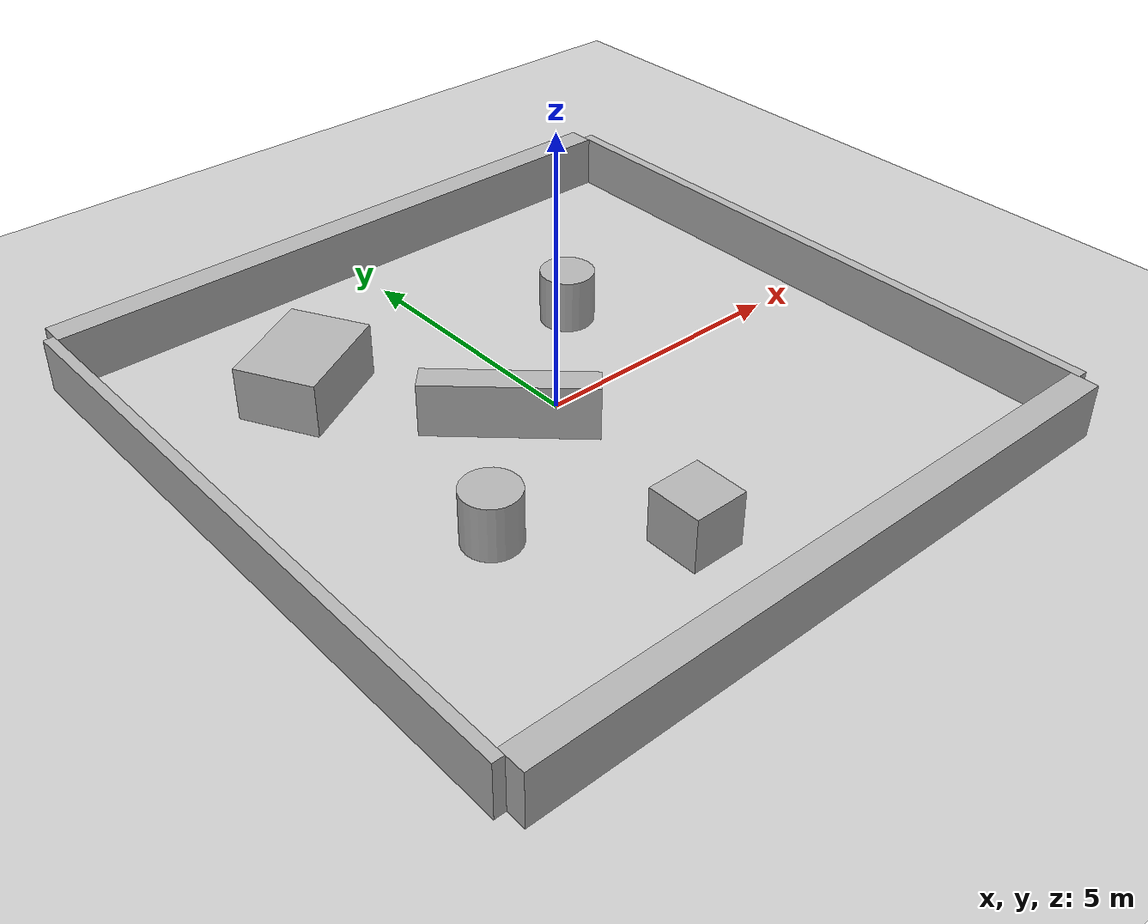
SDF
<sdf version='1.12'>
  <world name='empty'>
    <physics name='1ms' type='ignored'>
      <max_step_size>0.001</max_step_size>
      <real_time_factor>1</real_time_factor>
      <real_time_update_rate>1000</real_time_update_rate>
    </physics>
    <plugin name='gz::sim::systems::Physics' filename='gz-sim-physics-system'/>
    <plugin name='gz::sim::systems::UserCommands' filename='gz-sim-user-commands-system'/>
    <plugin name='gz::sim::systems::SceneBroadcaster' filename='gz-sim-scene-broadcaster-system'/>
    <plugin name='gz::sim::systems::Contact' filename='gz-sim-contact-system'/>
    <gravity>0 0 -9.8000000000000007</gravity>
    <magnetic_field>5.5644999999999998e-06 2.2875799999999999e-05 -4.2388400000000002e-05</magnetic_field>
    <atmosphere type='adiabatic'/>
    <scene>
      <ambient>0.400000006 0.400000006 0.400000006 1</ambient>
      <background>0.699999988 0.699999988 0.699999988 1</background>
      <shadows>true</shadows>
    </scene>
    <model name='ground_plane'>
      <static>true</static>
      <link name='link'>
        <collision name='collision'>
          <geometry>
            <plane>
              <normal>0 0 1</normal>
              <size>100 100</size>
            </plane>
          </geometry>
          <surface>
            <friction>
              <ode/>
            </friction>
            <bounce/>
            <contact/>
          </surface>
        </collision>
        <visual name='visual'>
          <geometry>
            <plane>
              <normal>0 0 1</normal>
              <size>100 100</size>
            </plane>
          </geometry>
          <material>
            <ambient>0.800000012 0.800000012 0.800000012 1</ambient>
            <diffuse>0.800000012 0.800000012 0.800000012 1</diffuse>
            <specular>0.800000012 0.800000012 0.800000012 1</specular>
          </material>
        </visual>
        <pose>0 0 0 0 0 0</pose>
        <inertial>
          <pose>0 0 0 0 0 0</pose>
          <mass>1</mass>
          <inertia>
            <ixx>1</ixx>
            <ixy>0</ixy>
            <ixz>0</ixz>
            <iyy>1</iyy>
            <iyz>0</iyz>
            <izz>1</izz>
          </inertia>
        </inertial>
        <enable_wind>false</enable_wind>
      </link>
      <pose>0 0 0 0 0 0</pose>
      <self_collide>false</self_collide>
    </model>
    <model name='cylinder_obstacle_1'>
      <pose>2 2 0.49999922592742291 2.4665081234791089e-19 2.0677277525939973e-19 2.9421610884104726e-20</pose>
      <link name='cylinder_link'>
        <inertial>
          <inertia>
            <ixx>0.14580000000000001</ixx>
            <ixy>0</ixy>
            <ixz>0</ixz>
            <iyy>0.14580000000000001</iyy>
            <iyz>0</iyz>
            <izz>0.125</izz>
          </inertia>
          <mass>1</mass>
          <pose>0 0 0 0 0 0</pose>
        </inertial>
        <collision name='cylinder_collision'>
          <geometry>
            <cylinder>
              <radius>0.5</radius>
              <length>1</length>
            </cylinder>
          </geometry>
          <surface>
            <friction>
              <ode/>
            </friction>
            <bounce/>
            <contact/>
          </surface>
        </collision>
        <visual name='cylinder_visual'>
          <geometry>
            <cylinder>
              <radius>0.5</radius>
              <length>1</length>
            </cylinder>
          </geometry>
          <material>
            <ambient>0.300000012 0.300000012 0.300000012 1</ambient>
            <diffuse>0.699999988 0.699999988 0.699999988 1</diffuse>
            <specular>1 1 1 1</specular>
          </material>
        </visual>
        <pose>0 0 0 0 0 0</pose>
        <enable_wind>false</enable_wind>
      </link>
      <static>false</static>
      <self_collide>false</self_collide>
    </model>
    <model name='square_obstacle_1'>
      <pose>-0.75 -4 0.49999999942649226 6.2500751687345998e-21 -1.1540144730936922e-20 -1.2902989857139787e-21</pose>
      <link name='box_link'>
        <inertial>
          <inertia>
            <ixx>0.16666</ixx>
            <ixy>0</ixy>
            <ixz>0</ixz>
            <iyy>0.16666</iyy>
            <iyz>0</iyz>
            <izz>0.16666</izz>
          </inertia>
          <mass>1</mass>
          <pose>0 0 0 0 0 0</pose>
        </inertial>
        <collision name='box_collision'>
          <geometry>
            <box>
              <size>1 1 1</size>
            </box>
          </geometry>
          <surface>
            <friction>
              <ode/>
            </friction>
            <bounce/>
            <contact/>
          </surface>
        </collision>
        <visual name='box_visual'>
          <geometry>
            <box>
              <size>1 1 1</size>
            </box>
          </geometry>
          <material>
            <ambient>0.300000012 0.300000012 0.300000012 1</ambient>
            <diffuse>0.699999988 0.699999988 0.699999988 1</diffuse>
            <specular>1 1 1 1</specular>
          </material>
        </visual>
        <pose>0 0 0 0 0 0</pose>
        <enable_wind>false</enable_wind>
      </link>
      <static>false</static>
      <self_collide>false</self_collide>
    </model>
    <model name='cylinder_obstacle_2'>
      <pose>-3 -2 0.49999920234585904 -1.7904104261285866e-19 1.0700216960662857e-19 1.9528878220543976e-20</pose>
      <link name='cylinder_link'>
        <inertial>
          <inertia>
            <ixx>0.14580000000000001</ixx>
            <ixy>0</ixy>
            <ixz>0</ixz>
            <iyy>0.14580000000000001</iyy>
            <iyz>0</iyz>
            <izz>0.125</izz>
          </inertia>
          <mass>1</mass>
          <pose>0 0 0 0 0 0</pose>
        </inertial>
        <collision name='cylinder_collision'>
          <geometry>
            <cylinder>
              <radius>0.5</radius>
              <length>1</length>
            </cylinder>
          </geometry>
          <surface>
            <friction>
              <ode/>
            </friction>
            <bounce/>
            <contact/>
          </surface>
        </collision>
        <visual name='cylinder_visual'>
          <geometry>
            <cylinder>
              <radius>0.5</radius>
              <length>1</length>
            </cylinder>
          </geometry>
          <material>
            <ambient>0.300000012 0.300000012 0.300000012 1</ambient>
            <diffuse>0.699999988 0.699999988 0.699999988 1</diffuse>
            <specular>1 1 1 1</specular>
          </material>
        </visual>
        <pose>0 0 0 0 0 0</pose>
        <enable_wind>false</enable_wind>
      </link>
      <static>false</static>
      <self_collide>false</self_collide>
    </model>
    <model name='square_obstacle_2'>
      <pose>-1 3.4604543583809767e-18 0.49999999856397226 2.6059651341812835e-20 1.9259975583194655e-20 -0.75000000000000011</pose>
      <link name='box_link'>
        <inertial>
          <inertia>
            <ixx>0.16666</ixx>
            <ixy>0</ixy>
            <ixz>0</ixz>
            <iyy>0.16666</iyy>
            <iyz>0</iyz>
            <izz>0.16666</izz>
          </inertia>
          <mass>1</mass>
          <pose>0 0 0 0 0 0</pose>
        </inertial>
        <collision name='box_collision'>
          <geometry>
            <box>
              <size>3 0.5 1</size>
            </box>
          </geometry>
          <surface>
            <friction>
              <ode/>
            </friction>
            <bounce/>
            <contact/>
          </surface>
        </collision>
        <visual name='box_visual'>
          <geometry>
            <box>
              <size>3 0.5 1</size>
            </box>
          </geometry>
          <material>
            <ambient>0.300000012 0.300000012 0.300000012 1</ambient>
            <diffuse>0.699999988 0.699999988 0.699999988 1</diffuse>
            <specular>1 1 1 1</specular>
          </material>
        </visual>
        <pose>0 0 0 0 0 0</pose>
        <enable_wind>false</enable_wind>
      </link>
      <static>false</static>
      <self_collide>false</self_collide>
    </model>
    <model name='square_obstacle_3'>
      <pose>-3 2.9999999999999996 0.49999999949416174 5.2326629222737833e-21 5.3886024438755102e-21 0.49999999999999983</pose>
      <link name='box_link'>
        <inertial>
          <inertia>
            <ixx>0.16666</ixx>
            <ixy>0</ixy>
            <ixz>0</ixz>
            <iyy>0.16666</iyy>
            <iyz>0</iyz>
            <izz>0.16666</izz>
          </inertia>
          <mass>1</mass>
          <pose>0 0 0 0 0 0</pose>
        </inertial>
        <collision name='box_collision'>
          <geometry>
            <box>
              <size>2 1.5 1</size>
            </box>
          </geometry>
          <surface>
            <friction>
              <ode/>
            </friction>
            <bounce/>
            <contact/>
          </surface>
        </collision>
        <visual name='box_visual'>
          <geometry>
            <box>
              <size>2 1.5 1</size>
            </box>
          </geometry>
          <material>
            <ambient>0.300000012 0.300000012 0.300000012 1</ambient>
            <diffuse>0.699999988 0.699999988 0.699999988 1</diffuse>
            <specular>1 1 1 1</specular>
          </material>
        </visual>
        <pose>0 0 0 0 0 0</pose>
        <enable_wind>false</enable_wind>
      </link>
      <static>false</static>
      <self_collide>false</self_collide>
    </model>
    <model name='fence_1'>
      <pose>-6.0999999999999996 -5.2900611738571668e-22 0.49999999458768024 -3.4933239014734824e-21 2.9721118085351414e-19 2.5235150101542643e-22</pose>
      <link name='box_link'>
        <inertial>
          <inertia>
            <ixx>0.16666</ixx>
            <ixy>0</ixy>
            <ixz>0</ixz>
            <iyy>0.16666</iyy>
            <iyz>0</iyz>
            <izz>0.16666</izz>
          </inertia>
          <mass>1</mass>
          <pose>0 0 0 0 0 0</pose>
        </inertial>
        <collision name='box_collision'>
          <geometry>
            <box>
              <size>0.20000000000000001 12 1</size>
            </box>
          </geometry>
          <surface>
            <friction>
              <ode/>
            </friction>
            <bounce/>
            <contact/>
          </surface>
        </collision>
        <visual name='box_visual'>
          <geometry>
            <box>
              <size>0.20000000000000001 12 1</size>
            </box>
          </geometry>
          <material>
            <ambient>0.300000012 0.300000012 0.300000012 1</ambient>
            <diffuse>0.699999988 0.699999988 0.699999988 1</diffuse>
            <specular>1 1 1 1</specular>
          </material>
        </visual>
        <pose>0 0 0 0 0 0</pose>
        <enable_wind>false</enable_wind>
      </link>
      <static>false</static>
      <self_collide>false</self_collide>
    </model>
    <model name='fence_2'>
      <pose>6.0999999999999996 -5.2900611738571668e-22 0.49999999458768024 -3.4933239014734824e-21 2.9721118085351414e-19 2.5235150101542643e-22</pose>
      <link name='box_link'>
        <inertial>
          <inertia>
            <ixx>0.16666</ixx>
            <ixy>0</ixy>
            <ixz>0</ixz>
            <iyy>0.16666</iyy>
            <iyz>0</iyz>
            <izz>0.16666</izz>
          </inertia>
          <mass>1</mass>
          <pose>0 0 0 0 0 0</pose>
        </inertial>
        <collision name='box_collision'>
          <geometry>
            <box>
              <size>0.20000000000000001 12 1</size>
            </box>
          </geometry>
          <surface>
            <friction>
              <ode/>
            </friction>
            <bounce/>
            <contact/>
          </surface>
        </collision>
        <visual name='box_visual'>
          <geometry>
            <box>
              <size>0.20000000000000001 12 1</size>
            </box>
          </geometry>
          <material>
            <ambient>0.300000012 0.300000012 0.300000012 1</ambient>
            <diffuse>0.699999988 0.699999988 0.699999988 1</diffuse>
            <specular>1 1 1 1</specular>
          </material>
        </visual>
        <pose>0 0 0 0 0 0</pose>
        <enable_wind>false</enable_wind>
      </link>
      <static>false</static>
      <self_collide>false</self_collide>
    </model>
    <model name='fence_3'>
      <pose>0.0 6.1 0.49999999990199806 6.2287739151293738e-22 9.3279666454713669e-22 -3.6315533669320137e-22</pose>
      <link name='box_link'>
        <inertial>
          <inertia>
            <ixx>0.16666</ixx>
            <ixy>0</ixy>
            <ixz>0</ixz>
            <iyy>0.16666</iyy>
            <iyz>0</iyz>
            <izz>0.16666</izz>
          </inertia>
          <mass>1</mass>
          <pose>0 0 0 0 0 0</pose>
        </inertial>
        <collision name='box_collision'>
          <geometry>
            <box>
              <size>12 0.5 1</size>
            </box>
          </geometry>
          <surface>
            <friction>
              <ode/>
            </friction>
            <bounce/>
            <contact/>
          </surface>
        </collision>
        <visual name='box_visual'>
          <geometry>
            <box>
              <size>12 0.5 1</size>
            </box>
          </geometry>
          <material>
            <ambient>0.300000012 0.300000012 0.300000012 1</ambient>
            <diffuse>0.699999988 0.699999988 0.699999988 1</diffuse>
            <specular>1 1 1 1</specular>
          </material>
        </visual>
        <pose>0 0 0 0 0 0</pose>
        <enable_wind>false</enable_wind>
      </link>
      <static>false</static>
      <self_collide>false</self_collide>
    </model>
    <model name='fence_4'>
      <pose>0.0 -6.1 0.49999999990199806 6.2287739151293738e-22 9.3279666454713669e-22 -3.6315533669320137e-22</pose>
      <link name='box_link'>
        <inertial>
          <inertia>
            <ixx>0.16666</ixx>
            <ixy>0</ixy>
            <ixz>0</ixz>
            <iyy>0.16666</iyy>
            <iyz>0</iyz>
            <izz>0.16666</izz>
          </inertia>
          <mass>1</mass>
          <pose>0 0 0 0 0 0</pose>
        </inertial>
        <collision name='box_collision'>
          <geometry>
            <box>
              <size>12 0.5 1</size>
            </box>
          </geometry>
          <surface>
            <friction>
              <ode/>
            </friction>
            <bounce/>
            <contact/>
          </surface>
        </collision>
        <visual name='box_visual'>
          <geometry>
            <box>
              <size>12 0.5 1</size>
            </box>
          </geometry>
          <material>
            <ambient>0.300000012 0.300000012 0.300000012 1</ambient>
            <diffuse>0.699999988 0.699999988 0.699999988 1</diffuse>
            <specular>1 1 1 1</specular>
          </material>
        </visual>
        <pose>0 0 0 0 0 0</pose>
        <enable_wind>false</enable_wind>
      </link>
      <static>false</static>
      <self_collide>false</self_collide>
    </model>
    <light name='sun' type='directional'>
      <pose>0 0 10 0 0 0</pose>
      <cast_shadows>true</cast_shadows>
      <intensity>1</intensity>
      <direction>-0.5 0.10000000000000001 -0.90000000000000002</direction>
      <diffuse>0.800000012 0.800000012 0.800000012 1</diffuse>
      <specular>0.200000003 0.200000003 0.200000003 1</specular>
      <attenuation>
        <range>1000</range>
        <linear>0.01</linear>
        <constant>0.90000000000000002</constant>
        <quadratic>0.001</quadratic>
      </attenuation>
      <spot>
        <inner_angle>0</inner_angle>
        <outer_angle>0</outer_angle>
        <falloff>0</falloff>
      </spot>
    </light>
  </world>
</sdf>
